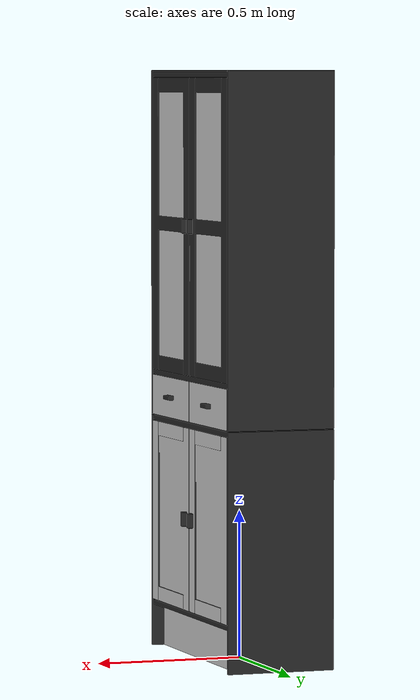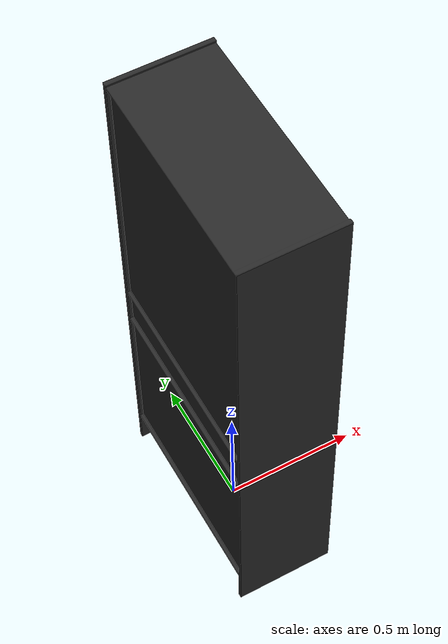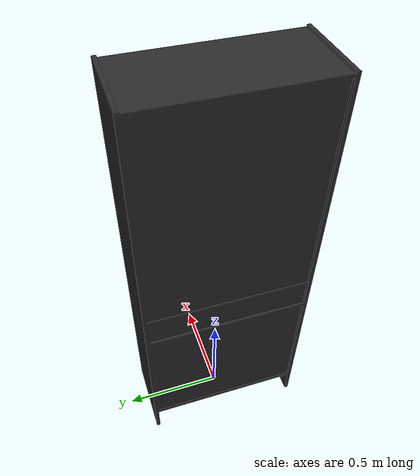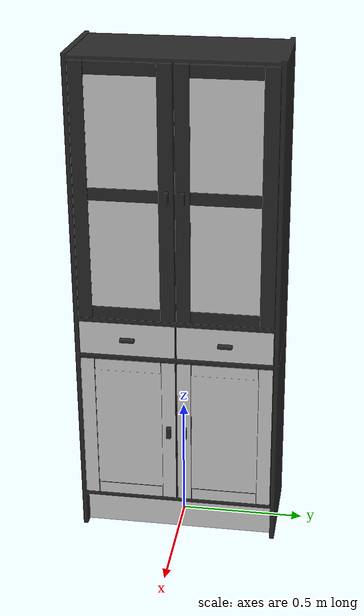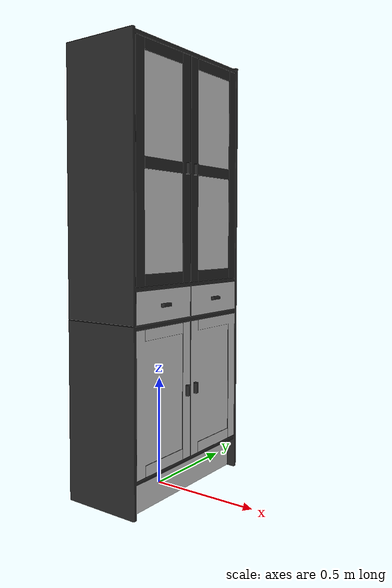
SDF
<?xml version="1.0" ?>
<sdf version="1.0">
  <model name="glasscase">
    <static>true</static>
    <link name="glasscase">
      <collision name="glasscase">
        <pose>0 0 0.9910 0 0 0</pose>
        <geometry>
          <box>
            <size>0.3870 0.8000 1.9820</size>
          </box>
        </geometry>
      </collision>

      <visual name="glasscase_mesh">
	  <cast_shadows>true</cast_shadows>
        <geometry>
          <mesh>
	        <uri>model://glasscase/meshes/model.dae</uri>
	      </mesh>
        </geometry>
      </visual>
    </link>
  </model>
</sdf>
